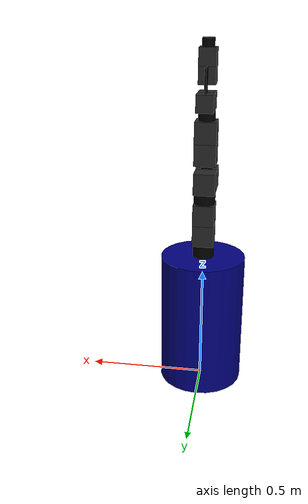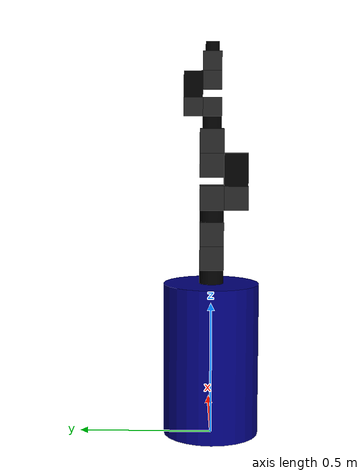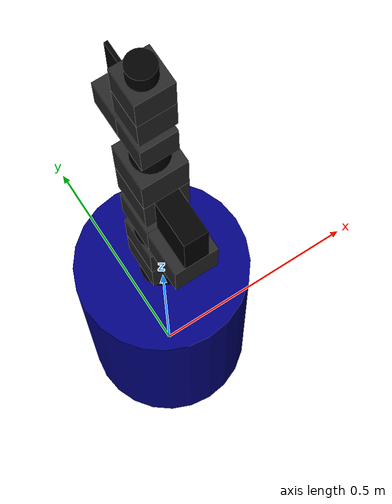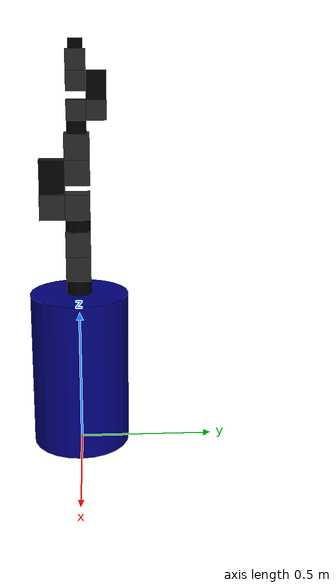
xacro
<robot name="schunk_arm_5dof" xmlns:xacro="http://ros.org/wiki/xacro">

<include filename="$(find metralabs_ros)/Models/xacro/links.xacro" />
<!-- Joints -->
<include filename="$(find metralabs_ros)/Models/xacro/joints.xacro" />

<!-- Links -->

<link name="ScitosBase">
   <visual>
    <origin xyz="0 0 0.29" rpy="0 0 0" />
    <geometry>
      <cylinder radius="0.18" length="0.58" />
    </geometry>
    <material name="scitosblue">
      <color rgba=".0 .0 .5 1" />
    </material>
  </visual>
  <collision>
    <origin xyz="0 0 0.29" rpy="0 0 0" />
    <geometry>
      <cylinder radius="0.18" length="0.58" />
    </geometry>
  </collision>
</link>

<xacro:PAM name="PAM112_BaseConector" >
<cylinder radius="0.045" length="0.055" />
</xacro:PAM>

<xacro:big_cube name="P90_1_LowerCube" />
<xacro:big_cube name="P90_1_UpperCube" />

<xacro:PAM name="PAM102" >
<cylinder radius="0.045" length="0.045" />
</xacro:PAM>

<xacro:big_cube name="P90_2_LowerCube" />
<xacro:big_cube name="P90_2_UpperCube" />

<xacro:PAM name="PAM121" >
<box size="0.048 0.0905 0.122 " />
</xacro:PAM>

<xacro:big_cube name="P90_3_LowerCube" />
<xacro:big_cube name="P90_3_UpperCube" />

<xacro:PAM name="PAM110" >
<cylinder radius="0.035" length="0.045" />
</xacro:PAM>

<xacro:small_cube name="P70_1_LowerCube" />
<xacro:small_cube name="P70_1_UpperCube" />

<xacro:PAM name="PAM120" >
<box size="0.007 0.0705 0.098 " />
</xacro:PAM>

<xacro:small_cube name="P70_2_LowerCube" />
<xacro:small_cube name="P70_2_UpperCube" />

<xacro:PAM name="PAM100" >
<cylinder radius="0.025" length="0.035" />
</xacro:PAM>

</robot>

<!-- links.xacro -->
<robot xmlns:xacro="http://ros.org/wiki/xacro">

<material name="black">
    <color rgba="0 0 0 1"/>
</material>

<material name="gray">
    <color rgba="0.15 0.15 0.15 1"/>
</material>

<!-- Links -->
<xacro:macro name="big_cube" params="name">
<link name="${name}" >
    <visual>
        <origin xyz="0 0 0" rpy="0 0 0" />
        <geometry>
	    <box size="0.09 0.09 0.09" />
	</geometry>
	<material name="gray"/>
    </visual>

    <collision>
	<geometry>
	    <box size="0.09 0.09 0.09" />
	</geometry>
    </collision>
</link>
</xacro:macro>

<xacro:macro name="small_cube" params="name">
<link name="${name}" >
    <visual>
        <origin xyz="0 0 0" rpy="0 0 0" />
        <geometry>
	    <box size="0.07 0.07 0.07 " />
	</geometry>
	<material name="gray"/>
    </visual>

    <collision>
	<geometry>
	    <box size="0.07 0.07 0.07 " />
	</geometry>
    </collision>
</link>
</xacro:macro>

<xacro:macro name="PAM" params="name *shape">
<link name="${name}">
  <visual>
    <origin xyz="0 0 0" rpy="0 0 0" />
    <geometry>
      <xacro:insert_block name="shape" />
    </geometry>
    <material name="black"/>
  </visual>
  <collision>
    <geometry>
      <xacro:insert_block name="shape" />
    </geometry>
  </collision>
</link>
</xacro:macro>

</robot>

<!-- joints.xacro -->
<robot xmlns:xacro="http://ros.org/wiki/xacro">

<xacro:property name="max_vel" value="0.8" />

 <joint name="Fixed_A" type="fixed">
    <origin xyz="0 0 0.0725" rpy="0 0 0"/>
    <parent link="PAM112_BaseConector"/>
    <child link="P90_1_LowerCube"/>
 </joint>

 <joint name="Joint0" type="revolute">
    <origin xyz="0 0 0.09" rpy="0 0 0"/>
    <parent link="P90_1_LowerCube"/>
    <child link="P90_1_UpperCube"/>
    <limit lower="-3.0543" upper="3.0543" effort="2" velocity="${max_vel}" />
    <axis xyz="0 0 1" />
 </joint>

 <joint name="Fixed_B" type="fixed">
    <origin xyz="0 0 0.0675" rpy="0 0 0"/>
    <parent link="P90_1_UpperCube"/>
    <child link="PAM102"/>
 </joint>

  <joint name="Fixed_C" type="fixed">
    <origin xyz="0 0 0.0675" rpy="0 0 0"/>
    <parent link="PAM102"/>
    <child link="P90_2_LowerCube"/>
 </joint>

 <joint name="Joint1" type="revolute">
    <origin xyz="0 0.09 0" rpy="0 0 0"/>
    <parent link="P90_2_LowerCube"/>
    <child link="P90_2_UpperCube"/>
    <limit lower="-2.0071" upper="2.0071" effort="2" velocity="${max_vel}" />
    <axis xyz="0 1 0" />
 </joint>

 <joint name="Fixed_D" type="fixed">
    <origin xyz="0 -0.00025 0.106" rpy="0 0 0"/>
    <parent link="P90_2_UpperCube"/>
    <child link="PAM121"/>
 </joint>

 <joint name="Fixed_E" type="fixed">
    <origin xyz="0 -0.09025 0.016" rpy="0 0 0"/>
    <parent link="PAM121"/>
    <child link="P90_3_LowerCube"/>
 </joint>

 <joint name="Joint2" type="revolute">
    <origin xyz="0 0 0.09 " rpy="0 0 0"/>
    <parent link="P90_3_LowerCube"/>
    <child link="P90_3_UpperCube"/>
    <limit lower="-2.8099" upper="2.8099" effort="2" velocity="${max_vel}" />
    <axis xyz="0 0 1" />
 </joint>

 <joint name="Fixed_F" type="fixed">
    <origin xyz="0 0 0.0675" rpy="0 0 0"/>
    <parent link="P90_3_UpperCube"/>
    <child link="PAM110"/>
 </joint>

 <joint name="Fixed_G" type="fixed">
    <origin xyz="0 0 0.0575" rpy="0 0 0"/>
    <parent link="PAM110"/>
    <child link="P70_1_LowerCube"/>
 </joint>

 <joint name="Joint3" type="revolute">
    <origin xyz="0 -0.07 0 " rpy="0 0 0"/>
    <parent link="P70_1_LowerCube"/>
    <child link="P70_1_UpperCube"/>
    <limit lower="-0.78539816339744828" upper="2.007" effort="2" velocity="${max_vel}" />
    <axis xyz="0 -1 0" />
 </joint>

 <joint name="Fixed_H" type="fixed">
    <origin xyz="0 -0.00025 0.084" rpy="0 0 0"/>
    <parent link="P70_1_UpperCube"/>
    <child link="PAM120"/>
 </joint>

 <joint name="Fixed_I" type="fixed">
    <origin xyz="0 0.07025 0.014" rpy="0 0 0"/>
    <parent link="PAM120"/>
    <child link="P70_2_LowerCube"/>
 </joint>

 <joint name="Joint4" type="revolute">
    <origin xyz="0  0 0.07" rpy="0 0 0"/>
    <parent link="P70_2_LowerCube"/>
    <child link="P70_2_UpperCube"/>
    <limit lower="-2.8099" upper="2.8099" effort="2" velocity="${max_vel}" />
    <axis xyz="0 0 1" />
 </joint>

 <joint name="Fixed_J" type="fixed">
    <origin xyz="0 0 0.0525" rpy="0 0 0"/>
    <parent link="P70_2_UpperCube"/>
    <child link="PAM100"/>
 </joint>

 <joint name="Fixed_Base" type="fixed">
    <origin xyz="0 0  0.6075" rpy="0 0 3.14159265358979323846"/>
    <parent link="ScitosBase"/>
    <child link="PAM112_BaseConector"/>
 </joint>

</robot>
